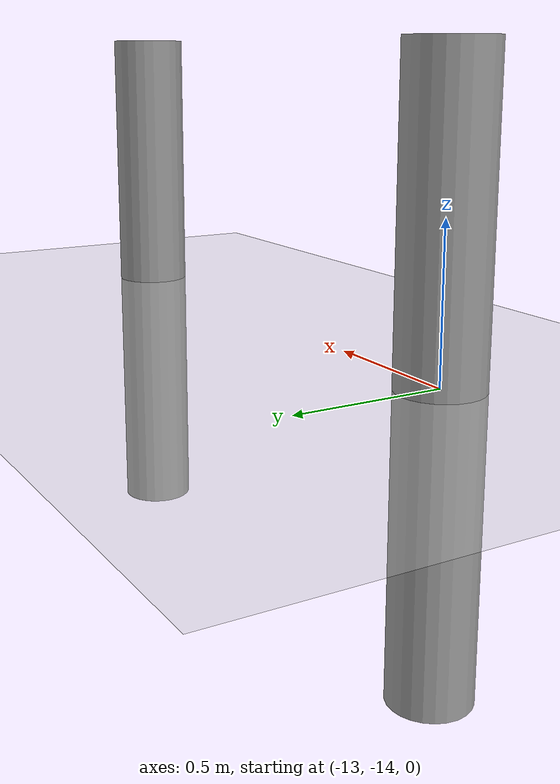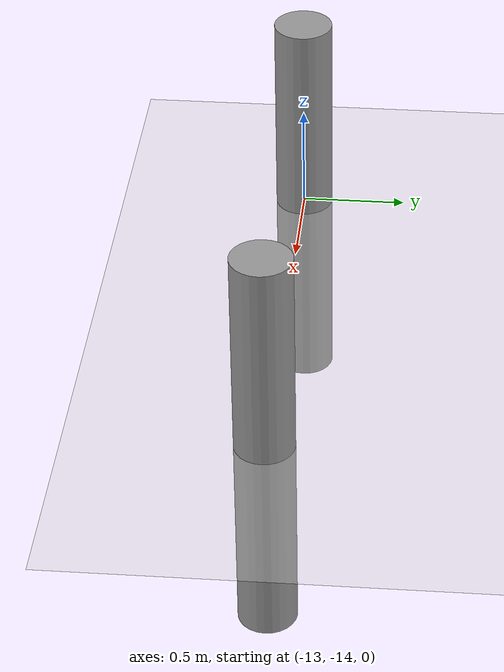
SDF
<sdf version="1.6">
 <world name="default">
  <model name="ground_plane">
   <static>1</static>
   <link name="link">
    <collision name="collision">
     <geometry><plane><normal>0 0 1</normal><size>100 100</size></plane></geometry>
     <surface><friction><ode><mu>100</mu><mu2>50</mu2></ode></friction></surface>
    </collision>
    <visual name="visual">
     <cast_shadows>0</cast_shadows>
     <geometry><plane><normal>0 0 1</normal><size>100 100</size></plane></geometry>
     <material>
      <script><uri>file://media/materials/scripts/gazebo.material</uri><name>Gazebo/Grey</name></script>
     </material>
    </visual>
   </link>
  </model>
  <model name="my_cylinder014_clone_2">
   <pose>-11 -14 0 0 -0 0</pose>
   <link name="my_cylinder014::link">
    <inertial>
     <mass>1</mass>
     <inertia><ixx>0.145833</ixx><ixy>0</ixy><ixz>0</ixz><iyy>0.145833</iyy><iyz>0</iyz><izz>0.125</izz></inertia>
    </inertial>
    <visual name="visual">
     <geometry><cylinder><radius>0.14</radius><length>2</length></cylinder></geometry>
     <material>
      <script><name>Gazebo/Grey</name><uri>file://media/materials/scripts/gazebo.material</uri></script>
      <ambient>0.3 0.3 0.3 1</ambient>
      <diffuse>0.7 0.7 0.7 1</diffuse>
      <specular>1 0.01 0.01 1</specular>
      <emissive>0 0 0 1</emissive>
      <shader type="vertex"><normal_map>__default__</normal_map></shader>
     </material>
    </visual>
    <collision name="collision">
     <geometry><cylinder><radius>0.14</radius><length>2</length></cylinder></geometry>
     <surface>
      <friction>
       <ode><mu>1</mu><mu2>1</mu2><fdir1>0 0 0</fdir1><slip1>0</slip1><slip2>0</slip2></ode>
       <torsional>
        <coefficient>1</coefficient>
        <patch_radius>0</patch_radius>
        <surface_radius>0</surface_radius>
        <use_patch_radius>1</use_patch_radius>
        <ode><slip>0</slip></ode>
       </torsional>
      </friction>
      <bounce><restitution_coefficient>0</restitution_coefficient><threshold>1e+06</threshold></bounce>
      <contact>
       <collide_without_contact>0</collide_without_contact>
       <collide_without_contact_bitmask>1</collide_without_contact_bitmask>
       <collide_bitmask>1</collide_bitmask>
       <ode>
        <soft_cfm>0</soft_cfm>
        <soft_erp>0.2</soft_erp>
        <kp>1e+13</kp>
        <kd>1</kd>
        <max_vel>0.01</max_vel>
        <min_depth>0</min_depth>
       </ode>
       <bullet>
        <split_impulse>1</split_impulse>
        <split_impulse_penetration_threshold>-0.01</split_impulse_penetration_threshold>
        <soft_cfm>0</soft_cfm>
        <soft_erp>0.2</soft_erp>
        <kp>1e+13</kp>
        <kd>1</kd>
       </bullet>
      </contact>
     </surface>
    </collision>
   </link>
   <static>1</static>
  </model>
  <model name="my_cylinder014_clone_1">
   <pose>-13 -14 0 0 -0 0</pose>
   <link name="my_cylinder014::link">
    <inertial>
     <mass>1</mass>
     <inertia><ixx>0.145833</ixx><ixy>0</ixy><ixz>0</ixz><iyy>0.145833</iyy><iyz>0</iyz><izz>0.125</izz></inertia>
    </inertial>
    <visual name="visual">
     <geometry><cylinder><radius>0.14</radius><length>2</length></cylinder></geometry>
     <material>
      <script><name>Gazebo/Grey</name><uri>file://media/materials/scripts/gazebo.material</uri></script>
      <ambient>0.3 0.3 0.3 1</ambient>
      <diffuse>0.7 0.7 0.7 1</diffuse>
      <specular>1 0.01 0.01 1</specular>
      <emissive>0 0 0 1</emissive>
      <shader type="vertex"><normal_map>__default__</normal_map></shader>
     </material>
    </visual>
    <collision name="collision">
     <geometry><cylinder><radius>0.14</radius><length>2</length></cylinder></geometry>
     <surface>
      <friction>
       <ode><mu>1</mu><mu2>1</mu2><fdir1>0 0 0</fdir1><slip1>0</slip1><slip2>0</slip2></ode>
       <torsional>
        <coefficient>1</coefficient>
        <patch_radius>0</patch_radius>
        <surface_radius>0</surface_radius>
        <use_patch_radius>1</use_patch_radius>
        <ode><slip>0</slip></ode>
       </torsional>
      </friction>
      <bounce><restitution_coefficient>0</restitution_coefficient><threshold>1e+06</threshold></bounce>
      <contact>
       <collide_without_contact>0</collide_without_contact>
       <collide_without_contact_bitmask>1</collide_without_contact_bitmask>
       <collide_bitmask>1</collide_bitmask>
       <ode>
        <soft_cfm>0</soft_cfm>
        <soft_erp>0.2</soft_erp>
        <kp>1e+13</kp>
        <kd>1</kd>
        <max_vel>0.01</max_vel>
        <min_depth>0</min_depth>
       </ode>
       <bullet>
        <split_impulse>1</split_impulse>
        <split_impulse_penetration_threshold>-0.01</split_impulse_penetration_threshold>
        <soft_cfm>0</soft_cfm>
        <soft_erp>0.2</soft_erp>
        <kp>1e+13</kp>
        <kd>1</kd>
       </bullet>
      </contact>
     </surface>
    </collision>
   </link>
   <static>1</static>
  </model>
  <model name="my_cylinder014_clone_1">
   <pose>-13 -14 0 0 -0 0</pose>
   <link name="my_cylinder014::link">
    <inertial>
     <mass>1</mass>
     <inertia><ixx>0.145833</ixx><ixy>0</ixy><ixz>0</ixz><iyy>0.145833</iyy><iyz>0</iyz><izz>0.125</izz></inertia>
    </inertial>
    <visual name="visual">
     <geometry><cylinder><radius>0.14</radius><length>2</length></cylinder></geometry>
     <material>
      <script><name>Gazebo/Grey</name><uri>file://media/materials/scripts/gazebo.material</uri></script>
      <ambient>0.3 0.3 0.3 1</ambient>
      <diffuse>0.7 0.7 0.7 1</diffuse>
      <specular>1 0.01 0.01 1</specular>
      <emissive>0 0 0 1</emissive>
      <shader type="vertex"><normal_map>__default__</normal_map></shader>
     </material>
    </visual>
    <collision name="collision">
     <geometry><cylinder><radius>0.14</radius><length>2</length></cylinder></geometry>
     <surface>
      <friction>
       <ode><mu>1</mu><mu2>1</mu2><fdir1>0 0 0</fdir1><slip1>0</slip1><slip2>0</slip2></ode>
       <torsional>
        <coefficient>1</coefficient>
        <patch_radius>0</patch_radius>
        <surface_radius>0</surface_radius>
        <use_patch_radius>1</use_patch_radius>
        <ode><slip>0</slip></ode>
       </torsional>
      </friction>
      <bounce><restitution_coefficient>0</restitution_coefficient><threshold>1e+06</threshold></bounce>
      <contact>
       <collide_without_contact>0</collide_without_contact>
       <collide_without_contact_bitmask>1</collide_without_contact_bitmask>
       <collide_bitmask>1</collide_bitmask>
       <ode>
        <soft_cfm>0</soft_cfm>
        <soft_erp>0.2</soft_erp>
        <kp>1e+13</kp>
        <kd>1</kd>
        <max_vel>0.01</max_vel>
        <min_depth>0</min_depth>
       </ode>
       <bullet>
        <split_impulse>1</split_impulse>
        <split_impulse_penetration_threshold>-0.01</split_impulse_penetration_threshold>
        <soft_cfm>0</soft_cfm>
        <soft_erp>0.2</soft_erp>
        <kp>1e+13</kp>
        <kd>1</kd>
       </bullet>
      </contact>
     </surface>
    </collision>
   </link>
   <static>1</static>
  </model>
 </world>
</sdf>
